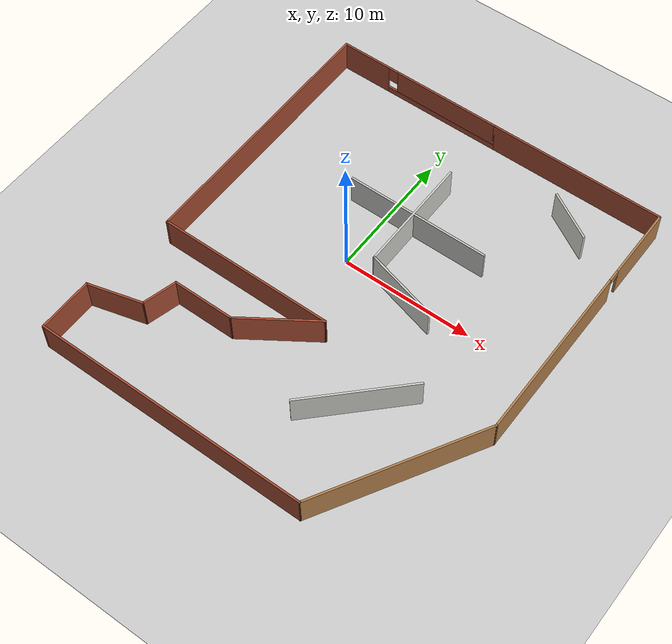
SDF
<sdf version="1.7">
 <world name="default">
  <light name="sun" type="directional">
   <pose>0 0 10 0 -0 0</pose>
   <diffuse>0.8 0.8 0.8 1</diffuse>
   <specular>0.2 0.2 0.2 1</specular>
   <attenuation>
    <range>1000</range>
    <constant>0.9</constant>
    <linear>0.01</linear>
    <quadratic>0.001</quadratic>
   </attenuation>
   <direction>-0.5 0.1 -0.9</direction>
   <spot><inner_angle>0</inner_angle><outer_angle>0</outer_angle><falloff>0</falloff></spot>
  </light>
  <model name="ground_plane">
   <static>1</static>
   <link name="link">
    <collision name="collision">
     <geometry><plane><normal>0 0 1</normal><size>100 100</size></plane></geometry>
     <surface>
      <contact><collide_bitmask>65535</collide_bitmask></contact>
      <friction><ode><mu>100</mu><mu2>50</mu2></ode></friction>
     </surface>
    </collision>
    <visual name="visual">
     <cast_shadows>0</cast_shadows>
     <geometry><plane><normal>0 0 1</normal><size>100 100</size></plane></geometry>
     <material>
      <script><uri>file://media/materials/scripts/gazebo.material</uri><name>Gazebo/Grey</name></script>
     </material>
    </visual>
   </link>
  </model>
  <gravity>0 0 -9.8</gravity>
  <magnetic_field>6e-06 2.3e-05 -4.2e-05</magnetic_field>
  <atmosphere type="adiabatic"/>
  <physics type="ode">
   <max_step_size>0.001</max_step_size>
   <real_time_factor>1</real_time_factor>
   <real_time_update_rate>1000</real_time_update_rate>
  </physics>
  <scene><ambient>0.4 0.4 0.4 1</ambient><background>0.7 0.7 0.7 1</background><shadows>1</shadows></scene>
  <spherical_coordinates>
   <surface_model>EARTH_WGS84</surface_model>
   <latitude_deg>0</latitude_deg>
   <longitude_deg>0</longitude_deg>
   <elevation>0</elevation>
   <heading_deg>0</heading_deg>
  </spherical_coordinates>
  <model name="map_world">
   <pose>2.11302 -1.43314 0 0 -0 0</pose>
   <link name="Wall_0">
    <collision name="Wall_0_Collision">
     <geometry><box><size>13.5 0.15 2.5</size></box></geometry>
     <pose>0 0 1.25 0 -0 0</pose>
    </collision>
    <visual name="Wall_0_Visual">
     <pose>0 0 1.25 0 -0 0</pose>
     <geometry><box><size>13.5 0.15 2.5</size></box></geometry>
     <material>
      <script><uri>file://media/materials/scripts/gazebo.material</uri><name>Gazebo/Bricks</name></script>
      <ambient>1 1 1 1</ambient>
     </material>
     <meta><layer>0</layer></meta>
    </visual>
    <pose>-6.0803 -4.48881 0 0 -0 3.14159</pose>
   </link>
   <link name="Wall_1">
    <collision name="Wall_1_Collision">
     <geometry><box><size>20.25 0.15 2.5</size></box></geometry>
     <pose>0 0 1.25 0 -0 0</pose>
    </collision>
    <visual name="Wall_1_Visual">
     <pose>0 0 1.25 0 -0 0</pose>
     <geometry><box><size>20.25 0.15 2.5</size></box></geometry>
     <material>
      <script><uri>file://media/materials/scripts/gazebo.material</uri><name>Gazebo/Bricks</name></script>
      <ambient>1 1 1 1</ambient>
     </material>
     <meta><layer>0</layer></meta>
    </visual>
    <pose>-12.7553 5.56119 0 0 -0 1.5708</pose>
   </link>
   <link name="Wall_10">
    <collision name="Wall_10_Collision">
     <geometry><box><size>4.25 0.15 2.5</size></box></geometry>
     <pose>0 0 1.25 0 -0 0</pose>
    </collision>
    <visual name="Wall_10_Visual">
     <pose>0 0 1.25 0 -0 0</pose>
     <geometry><box><size>4.25 0.15 2.5</size></box></geometry>
     <material>
      <script><uri>file://media/materials/scripts/gazebo.material</uri><name>Gazebo/Bricks</name></script>
      <ambient>1 1 1 1</ambient>
     </material>
     <meta><layer>0</layer></meta>
    </visual>
    <pose>-13.7053 -13.5337 0 0 -0 1.5708</pose>
   </link>
   <link name="Wall_11">
    <collision name="Wall_11_Collision">
     <geometry><box><size>4.25 0.15 2.5</size></box></geometry>
     <pose>0 0 1.25 0 -0 0</pose>
    </collision>
    <visual name="Wall_11_Visual">
     <pose>0 0 1.25 0 -0 0</pose>
     <geometry><box><size>4.25 0.15 2.5</size></box></geometry>
     <material>
      <script><uri>file://media/materials/scripts/gazebo.material</uri><name>Gazebo/Bricks</name></script>
      <ambient>1 1 1 1</ambient>
     </material>
     <meta><layer>0</layer></meta>
    </visual>
    <pose>-11.7252 -10.9532 0 0 -0 0.261799</pose>
   </link>
   <link name="Wall_12">
    <collision name="Wall_12_Collision">
     <geometry><box><size>2.75 0.15 2.5</size></box></geometry>
     <pose>0 0 1.25 0 -0 0</pose>
    </collision>
    <visual name="Wall_12_Visual">
     <pose>0 0 1.25 0 -0 0</pose>
     <geometry><box><size>2.75 0.15 2.5</size></box></geometry>
     <material>
      <script><uri>file://media/materials/scripts/gazebo.material</uri><name>Gazebo/Bricks</name></script>
      <ambient>1 1 1 1</ambient>
     </material>
     <meta><layer>0</layer></meta>
    </visual>
    <pose>-9.40854 -9.16688 0 0 -0 1.309</pose>
   </link>
   <link name="Wall_13">
    <collision name="Wall_13_Collision">
     <geometry><box><size>4.75 0.15 2.5</size></box></geometry>
     <pose>0 0 1.25 0 -0 0</pose>
    </collision>
    <visual name="Wall_13_Visual">
     <pose>0 0 1.25 0 -0 0</pose>
     <geometry><box><size>4.75 0.15 2.5</size></box></geometry>
     <material>
      <script><uri>file://media/materials/scripts/gazebo.material</uri><name>Gazebo/Bricks</name></script>
      <ambient>1 1 1 1</ambient>
     </material>
     <meta><layer>0</layer></meta>
    </visual>
    <pose>-6.77207 -7.91118 0 0 -0 0</pose>
   </link>
   <link name="Wall_14">
    <collision name="Wall_14_Collision">
     <geometry><box><size>6.26431 0.15 2.5</size></box></geometry>
     <pose>0 0 1.25 0 -0 0</pose>
    </collision>
    <visual name="Wall_14_Visual">
     <pose>0 0 1.25 0 -0 0</pose>
     <geometry><box><size>6.26431 0.15 2.5</size></box></geometry>
     <material>
      <script><uri>file://media/materials/scripts/gazebo.material</uri><name>Gazebo/Bricks</name></script>
      <ambient>1 1 1 1</ambient>
     </material>
     <meta><layer>0</layer></meta>
    </visual>
    <pose>-1.93869 -6.19999 0 0 -0 0.594061</pose>
   </link>
   <link name="Wall_16">
    <collision name="Wall_16_Collision">
     <geometry><box><size>11 0.15 2.5</size></box></geometry>
     <pose>0 0 1.25 0 -0 0</pose>
    </collision>
    <visual name="Wall_16_Visual">
     <pose>0 0 1.25 0 -0 0</pose>
     <geometry><box><size>11 0.15 2.5</size></box></geometry>
     <material>
      <script><uri>file://media/materials/scripts/gazebo.material</uri><name>Gazebo/CeilingTiled</name></script>
      <ambient>1 1 1 1</ambient>
     </material>
     <meta><layer>0</layer></meta>
    </visual>
    <pose>0.476136 5.92085 0 0 -0 0</pose>
   </link>
   <link name="Wall_18">
    <collision name="Wall_18_Collision">
     <geometry><box><size>9 0.15 2.5</size></box></geometry>
     <pose>0 0 1.25 0 -0 0</pose>
    </collision>
    <visual name="Wall_18_Visual">
     <pose>0 0 1.25 0 -0 0</pose>
     <geometry><box><size>9 0.15 2.5</size></box></geometry>
     <material>
      <script><uri>file://media/materials/scripts/gazebo.material</uri><name>Gazebo/CeilingTiled</name></script>
      <ambient>1 1 1 1</ambient>
     </material>
     <meta><layer>0</layer></meta>
    </visual>
    <pose>0.177485 5.88986 0 0 -0 -1.5708</pose>
   </link>
   <link name="Wall_19">
    <collision name="Wall_19_Collision">
     <geometry><box><size>5.75 0.15 2.5</size></box></geometry>
     <pose>0 0 1.25 0 -0 0</pose>
    </collision>
    <visual name="Wall_19_Visual">
     <pose>0 0 1.25 0 -0 0</pose>
     <geometry><box><size>5.75 0.15 2.5</size></box></geometry>
     <material>
      <script><uri>file://media/materials/scripts/gazebo.material</uri><name>Gazebo/CeilingTiled</name></script>
      <ambient>1 1 1 1</ambient>
     </material>
     <meta><layer>0</layer></meta>
    </visual>
    <pose>2.88208 0.740171 0 0 -0 -0.261799</pose>
   </link>
   <link name="Wall_2">
    <pose>-6.2053 15.6112 0 0 -0 0</pose>
    <visual name="Wall_2_Visual_0">
     <pose>-4.63375 0 1.25 0 -0 0</pose>
     <geometry><box><size>3.9825 0.15 2.5</size></box></geometry>
     <material>
      <script><uri>file://media/materials/scripts/gazebo.material</uri><name>Gazebo/Bricks</name></script>
      <ambient>0.996078 0.47451 0.0196078 1</ambient>
     </material>
     <meta><layer>0</layer></meta>
    </visual>
    <collision name="Wall_2_Collision_0">
     <geometry><box><size>3.9825 0.15 2.5</size></box></geometry>
     <pose>-4.63375 0 1.25 0 -0 0</pose>
    </collision>
    <visual name="Wall_2_Visual_1">
     <pose>1.99125 0 0.25 0 -0 0</pose>
     <geometry><box><size>9.2675 0.15 0.5</size></box></geometry>
     <material>
      <script><uri>file://media/materials/scripts/gazebo.material</uri><name>Gazebo/Bricks</name></script>
      <ambient>0.996078 0.47451 0.0196078 1</ambient>
     </material>
     <meta><layer>0</layer></meta>
    </visual>
    <collision name="Wall_2_Collision_1">
     <geometry><box><size>9.2675 0.15 0.5</size></box></geometry>
     <pose>1.99125 0 0.25 0 -0 0</pose>
    </collision>
    <visual name="Wall_2_Visual_2">
     <pose>2.39125 0 1.5 0 -0 0</pose>
     <geometry><box><size>8.4675 0.15 2</size></box></geometry>
     <material>
      <script><uri>file://media/materials/scripts/gazebo.material</uri><name>Gazebo/Bricks</name></script>
      <ambient>0.996078 0.47451 0.0196078 1</ambient>
     </material>
     <meta><layer>0</layer></meta>
    </visual>
    <collision name="Wall_2_Collision_2">
     <geometry><box><size>8.4675 0.15 2</size></box></geometry>
     <pose>2.39125 0 1.5 0 -0 0</pose>
    </collision>
    <visual name="Wall_2_Visual_3">
     <pose>-2.2425 0 1.9 0 -0 0</pose>
     <geometry><box><size>0.8 0.15 1.2</size></box></geometry>
     <material>
      <script><uri>file://media/materials/scripts/gazebo.material</uri><name>Gazebo/Bricks</name></script>
      <ambient>0.996078 0.47451 0.0196078 1</ambient>
     </material>
     <meta><layer>0</layer></meta>
    </visual>
    <collision name="Wall_2_Collision_3">
     <geometry><box><size>0.8 0.15 1.2</size></box></geometry>
     <pose>-2.2425 0 1.9 0 -0 0</pose>
    </collision>
   </link>
   <link name="Wall_21">
    <collision name="Wall_21_Collision">
     <geometry><box><size>8.5 0.15 2.5</size></box></geometry>
     <pose>0 0 1.25 0 -0 0</pose>
    </collision>
    <visual name="Wall_21_Visual">
     <pose>0 0 1.25 0 -0 0</pose>
     <geometry><box><size>8.5 0.15 2.5</size></box></geometry>
     <material>
      <script><uri>file://media/materials/scripts/gazebo.material</uri><name>Gazebo/CeilingTiled</name></script>
      <ambient>1 1 1 1</ambient>
     </material>
     <meta><layer>0</layer></meta>
    </visual>
    <pose>5.36238 -7.44676 0 0 -0 -2.35619</pose>
   </link>
   <link name="Wall_23">
    <collision name="Wall_23_Collision">
     <geometry><box><size>4 0.15 2.5</size></box></geometry>
     <pose>0 0 1.25 0 -0 0</pose>
    </collision>
    <visual name="Wall_23_Visual">
     <pose>0 0 1.25 0 -0 0</pose>
     <geometry><box><size>4 0.15 2.5</size></box></geometry>
     <material>
      <script><uri>file://media/materials/scripts/gazebo.material</uri><name>Gazebo/CeilingTiled</name></script>
      <ambient>1 1 1 1</ambient>
     </material>
     <meta><layer>0</layer></meta>
    </visual>
    <pose>8.76109 12.119 0 0 -0 -0.523599</pose>
   </link>
   <link name="Wall_6">
    <collision name="Wall_6_Collision">
     <geometry><box><size>13.5 0.15 2.5</size></box></geometry>
     <pose>0 0 1.25 0 -0 0</pose>
    </collision>
    <visual name="Wall_6_Visual">
     <pose>0 0 1.25 0 -0 0</pose>
     <geometry><box><size>13.5 0.15 2.5</size></box></geometry>
     <material>
      <script><uri>file://media/materials/scripts/gazebo.material</uri><name>Gazebo/Bricks</name></script>
      <ambient>0.996078 0.47451 0.0196078 1</ambient>
     </material>
     <meta><layer>0</layer></meta>
    </visual>
    <pose>7.0197 15.6112 0 0 -0 0</pose>
   </link>
   <link name="Wall_7">
    <pose>13.6947 5.68619 0 0 -0 -1.5708</pose>
    <visual name="Wall_7_Visual_0">
     <pose>-7.21385 0 1.25 0 -0 0</pose>
     <geometry><box><size>5.57229 0.15 2.5</size></box></geometry>
     <material>
      <script><uri>file://media/materials/scripts/gazebo.material</uri><name>Gazebo/Wood</name></script>
      <ambient>1 1 1 1</ambient>
     </material>
     <meta><layer>0</layer></meta>
    </visual>
    <collision name="Wall_7_Collision_0">
     <geometry><box><size>5.57229 0.15 2.5</size></box></geometry>
     <pose>-7.21385 0 1.25 0 -0 0</pose>
    </collision>
    <visual name="Wall_7_Visual_1">
     <pose>3.23615 0 1.25 0 -0 0</pose>
     <geometry><box><size>13.5277 0.15 2.5</size></box></geometry>
     <material>
      <script><uri>file://media/materials/scripts/gazebo.material</uri><name>Gazebo/Wood</name></script>
      <ambient>1 1 1 1</ambient>
     </material>
     <meta><layer>0</layer></meta>
    </visual>
    <collision name="Wall_7_Collision_1">
     <geometry><box><size>13.5277 0.15 2.5</size></box></geometry>
     <pose>3.23615 0 1.25 0 -0 0</pose>
    </collision>
    <visual name="Wall_7_Visual_2">
     <pose>-3.97771 0 2.25 0 -0 0</pose>
     <geometry><box><size>0.9 0.15 0.5</size></box></geometry>
     <material>
      <script><uri>file://media/materials/scripts/gazebo.material</uri><name>Gazebo/Wood</name></script>
      <ambient>1 1 1 1</ambient>
     </material>
     <meta><layer>0</layer></meta>
    </visual>
    <collision name="Wall_7_Collision_2">
     <geometry><box><size>0.9 0.15 0.5</size></box></geometry>
     <pose>-3.97771 0 2.25 0 -0 0</pose>
    </collision>
   </link>
   <link name="Wall_8">
    <collision name="Wall_8_Collision">
     <geometry><box><size>13.25 0.15 2.5</size></box></geometry>
     <pose>0 0 1.25 0 -0 0</pose>
    </collision>
    <visual name="Wall_8_Visual">
     <pose>0 0 1.25 0 -0 0</pose>
     <geometry><box><size>13.25 0.15 2.5</size></box></geometry>
     <material>
      <script><uri>file://media/materials/scripts/gazebo.material</uri><name>Gazebo/Wood</name></script>
      <ambient>1 1 1 1</ambient>
     </material>
     <meta><layer>0</layer></meta>
    </visual>
    <pose>10.4197 -9.91127 0 0 -0 -2.0944</pose>
   </link>
   <link name="Wall_9">
    <collision name="Wall_9_Collision">
     <geometry><box><size>21 0.15 2.5</size></box></geometry>
     <pose>0 0 1.25 0 -0 0</pose>
    </collision>
    <visual name="Wall_9_Visual">
     <pose>0 0 1.25 0 -0 0</pose>
     <geometry><box><size>21 0.15 2.5</size></box></geometry>
     <material>
      <script><uri>file://media/materials/scripts/gazebo.material</uri><name>Gazebo/Bricks</name></script>
      <ambient>1 1 1 1</ambient>
     </material>
     <meta><layer>0</layer></meta>
    </visual>
    <pose>-3.2803 -15.5837 0 0 -0 3.14159</pose>
   </link>
   <static>1</static>
  </model>
 </world>
</sdf>
